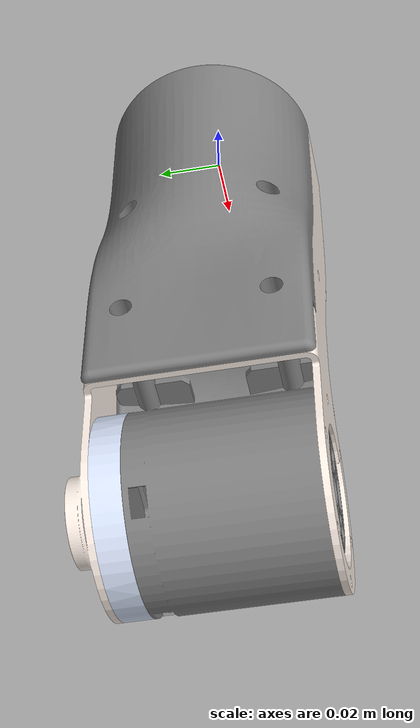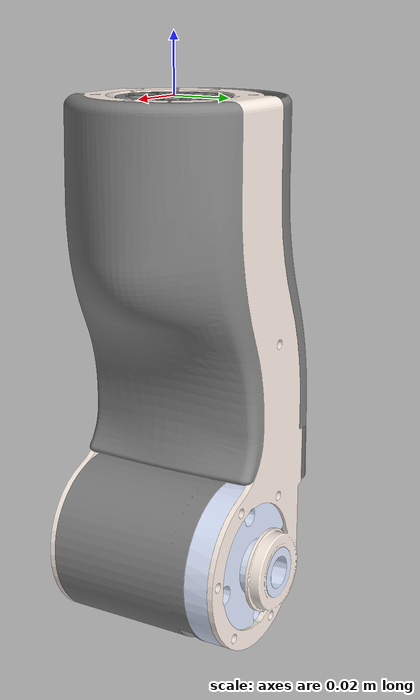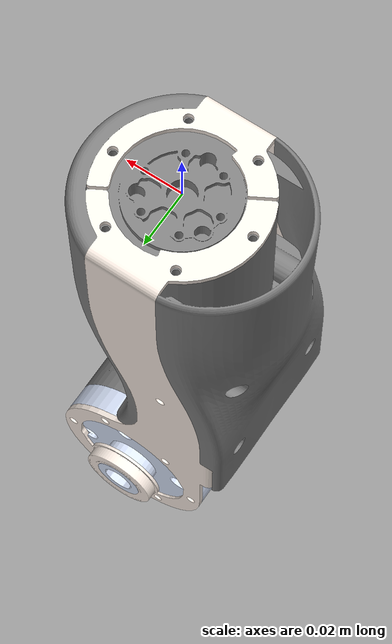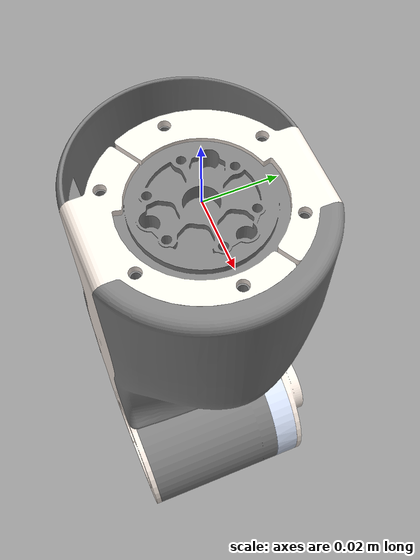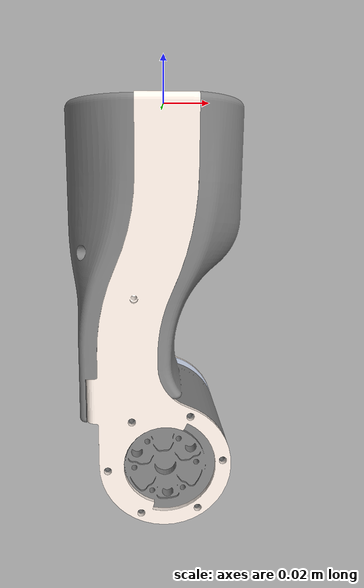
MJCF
<mujoco model="link3_obj">
  <asset>
    <mesh name="link3_00" file="link3_00.obj"/>
    <mesh name="link3_01" file="link3_01.obj"/>
    <mesh name="link3_02" file="link3_02.obj"/>
    <material name="link3_00_mat" rgba="0.501961 0.501961 0.501961 1.000000"/>
    <material name="link3_01_mat" rgba="1.000000 0.949020 0.909804 1.000000"/>
    <material name="link3_02_mat" rgba="0.866667 0.909804 1.000000 1.000000"/>
  </asset>
  <worldbody>
    <body name="link3_obj">
      <geom type="mesh" mesh="link3_00" material="link3_00_mat" contype="0" conaffinity="0" group="1"/>
      <geom type="mesh" mesh="link3_01" material="link3_01_mat" contype="0" conaffinity="0" group="1"/>
      <geom type="mesh" mesh="link3_02" material="link3_02_mat" contype="0" conaffinity="0" group="1"/>
    </body>
  </worldbody>
</mujoco>
